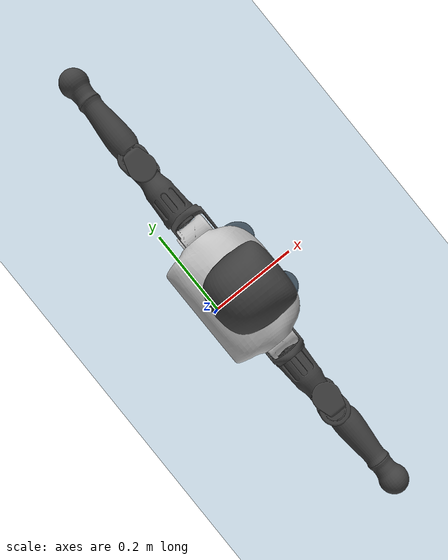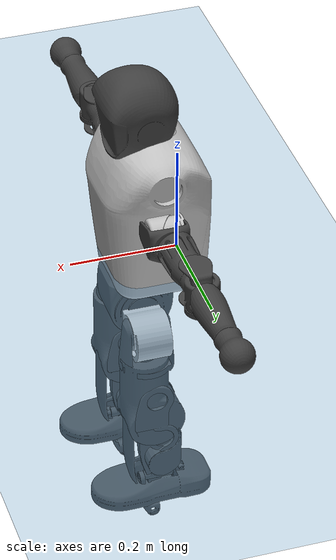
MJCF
<mujoco model="T1">
  <compiler angle="radian" assetdir="assets" balanceinertia="true" inertiafromgeom="false"/>

  <option timestep="0.005" density="1.2" viscosity="2e-05"/>

  <size nkey="1"/>

  <visual>
    <quality shadowsize="8192"/>
    <map shadowclip="0.5"/>
  </visual>

  <default>
    <default class="/">
      <joint armature="0.01" damping="0.01" frictionloss="0.1"/>
      <geom contype="0" conaffinity="0" group="1" solref="-1000 -80"/>
      <site size="0.01 0.005 0.005" group="5"/>
      <general forcelimited="true" biastype="affine" gainprm="25" biasprm="0 -25 -0.6"/>
      <default class="t1">
        <geom rgba="0.25 0.25 0.25 1"/>
        <default class="visual">
          <geom type="mesh" group="2"/>
        </default>
        <default class="collision">
          <geom group="3"/>
        </default>
        <default class="foot">
          <geom size="0.1115 0.05 0.015" type="box" condim="6" group="4" priority="1" solimp="0.015 1 0.015"/>
        </default>
        <default class="reward_collision_sphere">
          <geom group="5" rgba="1 0 0 1"/>
        </default>
      </default>
    </default>
  </default>

  <asset>
    <texture type="skybox" colorspace="auto" name="//unnamed_texture_0" builtin="gradient" rgb1="0.95 0.95 0.95" rgb2="0.95 0.95 0.95" width="100" height="600"/>
    <texture type="2d" colorspace="auto" name="texplane" builtin="checker" rgb1="0.345 0.575 0.748" rgb2="0.345 0.575 0.748" markrgb="1 1 1" width="512" height="512"/>
    <material name="MatPlane" class="/" texture="texplane" texuniform="true" texrepeat="2 2" specular="0.9"/>
    <mesh name="Trunk" class="/" file="Trunk.stl"/>
    <mesh name="H1" class="/" file="H1.stl"/>
    <mesh name="H2" class="/" file="H2.stl"/>
    <mesh name="AL1" class="/" file="AL1.stl"/>
    <mesh name="AL2" class="/" file="AL2.stl"/>
    <mesh name="AL3" class="/" file="AL3.stl"/>
    <mesh name="left_hand_link" class="/" file="left_hand_link.stl"/>
    <mesh name="AR1" class="/" file="AR1.stl"/>
    <mesh name="AR2" class="/" file="AR2.stl"/>
    <mesh name="AR3" class="/" file="AR3.stl"/>
    <mesh name="right_hand_link" class="/" file="right_hand_link.stl"/>
    <mesh name="Waist" class="/" file="Waist.stl"/>
    <mesh name="Hip_Pitch_Left" class="/" file="Hip_Pitch_Left.stl"/>
    <mesh name="Hip_Roll_Left" class="/" file="Hip_Roll_Left.stl"/>
    <mesh name="Hip_Yaw_Left" class="/" file="Hip_Yaw_Left.stl"/>
    <mesh name="Shank_Left" class="/" file="Shank_Left.stl"/>
    <mesh name="Ankle_Cross_Left" class="/" file="Ankle_Cross_Left.stl"/>
    <mesh name="left_foot_link" class="/" file="left_foot_link.stl"/>
    <mesh name="Hip_Pitch_Right" class="/" file="Hip_Pitch_Right.stl"/>
    <mesh name="Hip_Roll_Right" class="/" file="Hip_Roll_Right.stl"/>
    <mesh name="Hip_Yaw_Right" class="/" file="Hip_Yaw_Right.stl"/>
    <mesh name="Shank_Right" class="/" file="Shank_Right.stl"/>
    <mesh name="Ankle_Cross_Right" class="/" file="Ankle_Cross_Right.stl"/>
    <mesh name="right_foot_link" class="/" file="right_foot_link.stl"/>
  </asset>

  <worldbody>
    <geom name="floor" class="/" size="100 100 0.125" type="plane" group="0" material="MatPlane"/>
    <light name="toplight_shadow" class="/" pos="0 0 5" dir="0.0990148 0.0990148 -0.990148" type="directional" ambient="0.04 0.04 0.04" diffuse="0.55 0.55 0.55" specular="0.12 0.12 0.12"/>
    <light name="toplight_fill" class="/" pos="0 0 5" dir="0.0990148 0.0990148 -0.990148" type="directional" castshadow="false" ambient="0.04 0.04 0.04" diffuse="0.3 0.3 0.3" specular="0.08 0.08 0.08"/>
    <body name="trunk" childclass="t1" pos="0.00131744 0.00693671 -0.00528738" quat="0.999993 0.00253478 0.000848236 0.0025305">
      <inertial pos="0.0598815 -0.000741088 0.0680628" quat="0.99996 -0.00108317 -0.00841868 0.00297494" mass="7.4196" diaginertia="0.146351 0.024185 0.00540989"/>
      <joint name="//unnamed_joint_0" type="free" armature="0" damping="0" frictionloss="0"/>
      <geom name="//unnamed_geom_1" class="visual" rgba="0.76 0.76 0.76 1" mesh="Trunk"/>
      <geom name="//unnamed_geom_2" class="collision" size="0.0647783 0.086371 0.129557" pos="0.0678056 0 0.0788869" type="box"/>
      <geom name="//unnamed_geom_3" class="reward_collision_sphere" size="0.0993267" pos="0.0678056 0 0.0657391"/>
      <geom name="//unnamed_geom_4" class="reward_collision_sphere" size="0.0129557" pos="0.0678056 0.06831 0"/>
      <geom name="//unnamed_geom_5" class="reward_collision_sphere" size="0.0129557" pos="0.0678056 -0.06831 0"/>
      <geom name="//unnamed_geom_6" class="reward_collision_sphere" size="0.0129557" pos="0.0678056 0.0859902 0.11833"/>
      <geom name="//unnamed_geom_7" class="reward_collision_sphere" size="0.0129557" pos="0.0678056 -0.0859902 0.11833"/>
      <site name="imu" pos="-0.0264425 -0.000169793 0.00114474" size="0.0086371"/>
      <camera name="track" pos="0 -1.60729 0" quat="0.707107 0.707107 0 0" mode="trackcom"/>
      <camera name="ego_camera" pos="0.137871 0 0.276104" quat="-0.5 -0.5 0.5 0.5"/>
      <body name="H1" pos="0.0632098 -0.00749076 0.164773" quat="1 -6.73736e-05 -0.000114145 -6.71945e-05">
        <inertial pos="0.00519793 -0.00290081 0.0323571" quat="0.787402 -0.0287687 -0.0265522 0.615196" mass="0.292384" diaginertia="0.000471922 7.34817e-05 1.90196e-05"/>
        <joint name="AAHead_yaw" pos="0 0 0" axis="-0.00403021 -0.00171731 0.99999" range="-1.53383 1.68778" armature="0.0114202" damping="0" frictionloss="0.0431657"/>
        <geom name="//unnamed_geom_8" class="visual" mesh="H1"/>
        <body name="H2" pos="-0.0029527 -0.000288063 0.0366302" quat="1 -0.000127268 -0.000176808 0.000151553">
          <inertial pos="0.00868634 -0.00207096 0.0657462" quat="0.988538 0.110983 -0.0720377 -0.0727063" mass="0.43088" diaginertia="0.0041955 0.000687726 0.000206163"/>
          <joint name="Head_pitch" pos="0 0 0" axis="0.00681259 -0.999969 -0.00387046" range="-1.26745 0.39077" armature="0.012581" damping="0" frictionloss="0.0855494"/>
          <geom name="//unnamed_geom_9" class="visual" mesh="H2"/>
          <geom name="//unnamed_geom_10" class="collision" size="0.0690968" pos="0.0113009 0 0.072313"/>
          <geom name="//unnamed_geom_11" class="reward_collision_sphere" size="0.0777339" pos="0.0226019 0 0.0657391"/>
        </body>
      </body>
      <body name="AL1" pos="0.0657244 0.0875863 0.143448" quat="1 -5.84146e-05 0.000646577 0.000138782">
        <inertial pos="0.00198642 0.0360297 -0.000424767" quat="0.527847 0.503337 -0.50977 0.45625" mass="0.328876" diaginertia="0.00251048 0.000409762 3.21697e-05"/>
        <joint name="Left_Shoulder_Pitch" pos="0 0 0" axis="0.0158498 0.999861 0.00516175" range="-3.27319 1.18809" armature="0.00782484" damping="0.00576185" frictionloss="0.0800931"/>
        <geom name="//unnamed_geom_12" class="visual" rgba="0.76 0.76 0.76 1" mesh="AL1"/>
        <body name="AL2" pos="0.00404959 0.0396897 0.00226922" quat="1 0.00051641 -0.000236984 -0.000517815">
          <inertial pos="0.00752005 0.0336369 -0.0013411" quat="0.486605 0.509109 -0.485742 0.517762" mass="0.105665" diaginertia="0.000729993 0.000117033 2.12904e-05"/>
          <joint name="Left_Shoulder_Roll" pos="0 0 0" axis="-0.999979 -0.00650283 0.0002372" range="-1.53752 1.66671" armature="0.00830697" damping="0" frictionloss="0.0786756"/>
          <geom name="//unnamed_geom_13" class="visual" mesh="AL2"/>
          <body name="AL3" pos="-0.00629739 0.0508632 -0.00282921" quat="0.999996 0.00259299 -0.000523613 0.000701874">
            <inertial pos="0.00861536 0.0706986 -0.000198209" quat="0.711122 0.703068 0.000372461 -0.000538264" mass="0.62062" diaginertia="0.0231236 0.00475185 7.87342e-05"/>
            <joint name="Left_Elbow_Pitch" pos="0 0 0" axis="-0.00866332 -0.999962 0.000265447" range="-2.30198 2.27453" armature="0.010135" damping="0" frictionloss="0.0813286"/>
            <geom name="//unnamed_geom_14" class="visual" mesh="AL3"/>
            <geom name="//unnamed_geom_15" class="collision" size="0.0259113 0.0647783" pos="0 0.0401823 0" quat="0.707105 0.707108 0 0" type="cylinder"/>
            <geom name="//unnamed_geom_16" class="reward_collision_sphere" size="0.0310936"/>
            <body name="left_hand_link" pos="0.0029281 0.119835 0.00979316" quat="0.999993 0.00363778 0.000279632 -0.00117576">
              <inertial pos="-0.00172987 0.0925148 -0.00414176" quat="0.714677 0.699363 -0.003297 0.0107876" mass="0.230616" diaginertia="0.0152234 0.00291195 3.16092e-05"/>
              <joint name="Left_Elbow_Yaw" pos="0 0 0" axis="-0.00848743 0.00163418 0.999963" range="-2.47275 0.0228633" armature="0.00785252" damping="0.0156304" frictionloss="0.0807558"/>
              <geom name="//unnamed_geom_17" class="visual" mesh="left_hand_link"/>
              <geom name="//unnamed_geom_18" class="collision" size="0.0259113 0.0755747" pos="0 0.104474 0" quat="0.707105 0.707108 0 0" type="cylinder"/>
              <geom name="//unnamed_geom_19" class="reward_collision_sphere" size="0.0431855"/>
              <geom name="//unnamed_geom_20" class="reward_collision_sphere" size="0.0302299" pos="0 0.0884011 0"/>
              <geom name="//unnamed_geom_21" class="reward_collision_sphere" size="0.0302299" pos="0 0.172784 0"/>
            </body>
          </body>
        </body>
      </body>
      <body name="AR1" pos="0.0618247 -0.0765303 0.147719" quat="1 -0.000596607 0.000309712 0.000587777">
        <inertial pos="0.00142343 -0.0294313 -0.0085402" quat="0.510499 0.49541 -0.50119 0.492716" mass="0.355816" diaginertia="0.00262144 0.000498212 3.7588e-05"/>
        <joint name="Right_Shoulder_Pitch" pos="0 0 0" axis="-0.0124821 -0.999188 -0.0383027" range="-1.33986 3.26247" armature="0.0082751" damping="0.00817842" frictionloss="0.0615252"/>
        <geom name="//unnamed_geom_22" class="visual" rgba="0.76 0.76 0.76 1" mesh="AR1"/>
        <body name="AR2" pos="-0.00114358 -0.0346433 0.00275045" quat="0.999999 0.00045193 -0.000858892 0.00143178">
          <inertial pos="0.00780744 -0.0290287 0.00377161" quat="0.509554 0.477624 -0.517594 0.494294" mass="0.0912731" diaginertia="0.000652121 9.85652e-05 2.13165e-05"/>
          <joint name="Right_Shoulder_Roll" pos="0 0 0" axis="-0.999926 0.000648833 0.0121308" range="-1.70921 1.53025" armature="0.0118148" damping="0.00186464" frictionloss="0.0795502"/>
          <geom name="//unnamed_geom_23" class="visual" mesh="AR2"/>
          <body name="AR3" pos="-0.00162039 -0.0416183 -0.00762487" quat="0.999995 0.00072128 -0.00293025 -0.00064479">
            <inertial pos="-0.00985145 -0.066453 -0.00720501" quat="0.706391 0.707808 -0.000737426 -0.0042742" mass="0.698521" diaginertia="0.0277042 0.00450629 8.1763e-05"/>
            <joint name="Right_Elbow_Pitch" pos="0 0 0" axis="-5.46119e-05 1 8.66289e-05" stiffness="0.00886857" range="-2.29086 2.23705" armature="0.00875036" damping="0" frictionloss="0.0432464"/>
            <geom name="//unnamed_geom_24" class="visual" mesh="AR3"/>
            <geom name="//unnamed_geom_25" class="collision" size="0.0259113 0.0647783" pos="0 -0.0401823 0" quat="0.707105 0.707108 0 0" type="cylinder"/>
            <geom name="//unnamed_geom_26" class="reward_collision_sphere" size="0.0310936"/>
            <body name="right_hand_link" pos="0.00381047 -0.114163 0.00201636" quat="1 -0.00010947 -0.000171983 6.64025e-05">
              <inertial pos="-0.000272285 -0.0878969 -1.24119e-05" quat="0.710508 0.70366 -0.00384076 -0.00512911" mass="0.201207" diaginertia="0.0134292 0.0024348 2.40422e-05"/>
              <joint name="Right_Elbow_Yaw" pos="0 0 0" axis="0.0412094 -0.0215148 0.998919" range="0.00392345 2.42797" armature="0.00958114" damping="0" frictionloss="0.072621"/>
              <geom name="//unnamed_geom_27" class="visual" mesh="right_hand_link"/>
              <geom name="//unnamed_geom_28" class="collision" size="0.0259113 0.0755747" pos="0 -0.104474 0" quat="0.707105 0.707108 0 0" type="cylinder"/>
              <geom name="//unnamed_geom_29" class="reward_collision_sphere" size="0.0431855"/>
              <geom name="//unnamed_geom_30" class="reward_collision_sphere" size="0.0302299" pos="0 -0.0884011 0"/>
              <geom name="//unnamed_geom_31" class="reward_collision_sphere" size="0.0302299" pos="0 -0.172784 0"/>
            </body>
          </body>
        </body>
      </body>
      <body name="Waist" pos="0.0805563 0.00154048 -0.0805304" quat="0.99999 -0.000683285 6.98108e-05 -0.00443061">
        <inertial pos="0.0107944 -0.00530055 0.00977603" quat="0.976572 0.0218687 -0.213604 -0.014238" mass="1.82423" diaginertia="0.0100584 0.00178348 0.000579237"/>
        <joint name="Waist" pos="0 0 0" axis="-0.0151788 0.0114686 0.999819" range="-1.58022 1.5804" armature="0.00846895" damping="0.0150869" frictionloss="0.0907186"/>
        <geom name="//unnamed_geom_32" class="visual" mesh="Waist"/>
        <body name="Hip_Pitch_Left" pos="0.00402962 0.0905262 -0.00651497" quat="1 -3.14466e-05 4.16402e-05 0.000124663">
          <inertial pos="-0.00721473 -0.00357842 -0.0126872" quat="0.980461 0.195768 -0.00178146 -0.0191906" mass="0.645093" diaginertia="0.00348614 0.000434308 0.00014734"/>
          <joint name="Left_Hip_Pitch" pos="0 0 0" axis="0.02015 0.999566 -0.0214804" range="-1.83152 1.55003" armature="0.00726108" damping="0.00227223" frictionloss="0.0950831"/>
          <geom name="//unnamed_geom_33" class="visual" rgba="0.76 0.76 0.76 1" mesh="Hip_Pitch_Left"/>
          <body name="Hip_Roll_Left" pos="0.00558982 0.00184998 -0.00397708" quat="1 -0.000158032 -5.68578e-05 0.000222368">
            <inertial pos="0.00193954 0.00931936 -0.0338064" quat="0.706588 -0.00706045 -0.00825864 0.707542" mass="0.261102" diaginertia="0.0037263 0.000600603 5.89786e-05"/>
            <joint name="Left_Hip_Roll" pos="0 0 0" axis="-0.999946 0.0038584 0.00964305" stiffness="0.00280858" range="-1.58864 0.145786" armature="0.00886465" damping="0.0529153" frictionloss="0.0621421"/>
            <geom name="//unnamed_geom_34" class="visual" mesh="Hip_Roll_Left"/>
            <geom name="//unnamed_geom_35" class="reward_collision_sphere" size="0.0475041"/>
            <body name="Hip_Yaw_Left" pos="0.00279385 0.00213079 -0.0548405" quat="0.999999 -0.00139906 -0.000361152 0.000929658">
              <inertial pos="-0.00712759 -0.000545577 -0.053757" quat="0.698539 -0.0345895 -0.030278 0.714094" mass="1.43085" diaginertia="0.0507492 0.00956257 0.000355046"/>
              <joint name="Left_Hip_Yaw" pos="0 0 0" axis="0.00269916 -0.0110903 -0.999935" stiffness="0.035314" range="-0.81804 0.974597" armature="0.00829562" damping="0" frictionloss="0.0895748"/>
              <geom name="//unnamed_geom_36" class="visual" mesh="Hip_Yaw_Left"/>
              <geom name="//unnamed_geom_37" class="collision" size="0.0431855 0.0690968" type="cylinder"/>
              <body name="Shank_Left" pos="-0.0114715 0.00215342 -0.0778668" quat="1 -0.000574321 0.000588136 1.95006e-05">
                <inertial pos="-0.00102078 0.00319213 -0.0809521" quat="0.998127 0.0114086 -0.0117979 0.0589418" mass="1.10408" diaginertia="0.060996 0.0130372 0.00024767"/>
                <joint name="Left_Knee_Pitch" pos="0 0 0" axis="0.0037335 0.999953 0.00898276" range="0.00870681 2.42114" armature="0.00638893" damping="0.0292252" frictionloss="0.0776374"/>
                <geom name="//unnamed_geom_38" class="visual" mesh="Shank_Left"/>
                <geom name="//unnamed_geom_39" class="collision" size="0.0431855 0.0647783" pos="0 0 -0.0788869" type="cylinder"/>
                <geom name="//unnamed_geom_40" class="reward_collision_sphere" size="0.0561412"/>
                <body name="Ankle_Cross_Left" pos="-0.0074235 0.000971182 -0.194013" quat="0.999999 -0.000451624 0.000702295 0.00126478">
                  <inertial pos="0.00591978 0.00157796 -0.00847481" quat="0.438042 0.546399 0.556429 0.447162" mass="0.0486136" diaginertia="5.63657e-05 8.71836e-06 1.3845e-06"/>
                  <joint name="Left_Ankle_Pitch" pos="0 0 0" axis="0.00351578 0.999993 -0.00102046" stiffness="0.0287984" range="-0.866276 0.338065" armature="0.00445871" damping="0" frictionloss="0.0949899"/>
                  <geom name="//unnamed_geom_41" class="visual" mesh="Ankle_Cross_Left"/>
                  <body name="left_foot_link" pos="0.000234984 0.00467377 -0.0123247" quat="0.999987 -0.00453948 0.00102432 0.00198358">
                    <inertial pos="0.00529635 0.00312633 -0.00771149" quat="0.0291694 0.601472 -0.00934099 0.798307" mass="0.400128" diaginertia="0.00454911 0.000772433 0.000237217"/>
                    <joint name="Left_Ankle_Roll" pos="0 0 0" axis="-0.99883 -0.04526 0.0170324" range="-0.455014 0.355958" armature="0.00885245" damping="0.0344408" frictionloss="0.0838243"/>
                    <geom name="//unnamed_geom_42" class="visual" mesh="left_foot_link"/>
                    <geom name="left_foot" class="foot" size="0.087019 0.0574837 0.0114871" pos="0.0113009 0 -0.00986086"/>
                    <geom name="//unnamed_geom_44" class="reward_collision_sphere" size="0.0449129" pos="0.0113009 0 -0.00986086"/>
                    <geom name="//unnamed_geom_45" class="reward_collision_sphere" size="0.0259113" pos="0.107359 -0.0184839 -0.00986086"/>
                    <geom name="//unnamed_geom_46" class="reward_collision_sphere" size="0.0259113" pos="-0.0791066 -0.0184839 -0.00986086"/>
                    <site name="left_foot" class="foot" pos="0.0113009 0 -0.00986086" size="0.0086371"/>
                  </body>
                </body>
              </body>
            </body>
          </body>
        </body>
        <body name="Hip_Pitch_Right" pos="-0.00151619 -0.0817087 0.00926344" quat="1 -0.000550677 -0.000376908 1.83234e-05">
          <inertial pos="0.00925693 0.0134088 -0.0110538" quat="0.973456 -0.22836 0.0146803 -0.00438794" mass="0.659142" diaginertia="0.00312804 0.000457177 0.000156507"/>
          <joint name="Right_Hip_Pitch" pos="0 0 0" axis="-0.00100043 -0.999999 -0.000290409" stiffness="0.00169066" range="-1.57851 1.88247" armature="0.0091189" damping="0.0474344" frictionloss="0.0802088"/>
          <geom name="//unnamed_geom_47" class="visual" rgba="0.76 0.76 0.76 1" mesh="Hip_Pitch_Right"/>
          <body name="Hip_Roll_Right" pos="0.00377016 0.00380629 -0.0039773" quat="0.999998 -0.000608175 -0.0013989 -0.000916506">
            <inertial pos="0.00615792 -0.00101755 -0.0400319" quat="0.722863 -0.0268596 0.00813425 0.690421" mass="0.238473" diaginertia="0.00280914 0.000499686 6.04468e-05"/>
            <joint name="Right_Hip_Roll" pos="0 0 0" axis="-0.999995 0.0010766 -0.0030046" range="-0.228142 1.59755" armature="0.00806772" damping="0.00754007" frictionloss="0.0662425"/>
            <geom name="//unnamed_geom_48" class="visual" mesh="Hip_Roll_Right"/>
            <geom name="//unnamed_geom_49" class="reward_collision_sphere" size="0.0475041"/>
            <body name="Hip_Yaw_Right" pos="0.0089803 0.00295834 -0.0536173" quat="0.999999 -0.00119968 -0.000237232 -0.000139091">
              <inertial pos="-0.00887536 4.2475e-05 -0.0624282" quat="0.709793 -0.0347453 -0.0283519 0.702982" mass="1.32974" diaginertia="0.041042 0.00825856 0.000273376"/>
              <joint name="Right_Hip_Yaw" pos="0 0 0" axis="-0.00431776 -0.00121116 -0.99999" range="-1.04408 0.962264" armature="0.00923996" damping="0" frictionloss="0.089504"/>
              <geom name="//unnamed_geom_50" class="visual" mesh="Hip_Yaw_Right"/>
              <geom name="//unnamed_geom_51" class="collision" size="0.0431855 0.0690968" type="cylinder"/>
              <body name="Shank_Right" pos="-0.00922488 0.0029297 -0.083534" quat="1 9.05858e-05 -0.000178752 -0.000380075">
                <inertial pos="-0.00622005 0.00646274 -0.0814697" quat="0.998655 0.0161296 -0.0120663 -0.0477662" mass="1.02688" diaginertia="0.0640444 0.0113911 0.000257378"/>
                <joint name="Right_Knee_Pitch" pos="0 0 0" axis="0.0116104 -0.99993 -0.00241658" stiffness="0.00318534" range="-2.18347 0.0219866" armature="0.00859514" damping="0.00243148" frictionloss="0.0794764"/>
                <geom name="//unnamed_geom_52" class="visual" mesh="Shank_Right"/>
                <geom name="//unnamed_geom_53" class="collision" size="0.0431855 0.0647783" pos="0 0 -0.0788869" type="cylinder"/>
                <geom name="//unnamed_geom_54" class="reward_collision_sphere" size="0.0561412"/>
                <body name="Ankle_Cross_Right" pos="0.00331013 0.000380984 -0.18331" quat="1 -2.90079e-05 4.70052e-05 1.41528e-05">
                  <inertial pos="-0.00751764 -0.00255298 -0.00494646" quat="0.44183 0.552177 0.551202 0.442791" mass="0.0504677" diaginertia="4.95296e-05 9.265e-06 1.29065e-06"/>
                  <joint name="Right_Ankle_Pitch" pos="0 0 0" axis="-0.0117785 -0.999326 0.0347647" stiffness="0.0279755" range="-0.428138 0.97891" armature="0.00882628" damping="0" frictionloss="0.0890048"/>
                  <geom name="//unnamed_geom_55" class="visual" mesh="Ankle_Cross_Right"/>
                  <body name="right_foot_link" pos="-0.00408594 -0.00680254 -0.0177083" quat="1 -0.000277167 -0.000185235 -0.000354925">
                    <inertial pos="-0.000225163 -0.00673977 0.00357142" quat="0.0318865 0.610873 -0.00149549 0.791085" mass="0.510201" diaginertia="0.00573093 0.000907438 0.00033627"/>
                    <joint name="Right_Ankle_Roll" pos="0 0 0" axis="-0.999984 3.08523e-05 -0.0057179" range="-0.317497 0.27291" armature="0.0129836" damping="0.0522203" frictionloss="0.0650773"/>
                    <geom name="//unnamed_geom_56" class="visual" mesh="right_foot_link"/>
                    <geom name="right_foot" class="foot" size="0.0795285 0.0541941 0.00965715" pos="0.0113009 0 -0.00986086"/>
                    <geom name="//unnamed_geom_58" class="reward_collision_sphere" size="0.0345484"/>
                    <geom name="//unnamed_geom_59" class="reward_collision_sphere" size="0.0259113" pos="0.0113009 0 -0.00986086"/>
                    <geom name="//unnamed_geom_60" class="reward_collision_sphere" size="0.0259113" pos="0.107359 0.0184839 -0.00986086"/>
                    <geom name="//unnamed_geom_61" class="reward_collision_sphere" size="0.0259113" pos="-0.0791066 0.0184839 -0.00986086"/>
                    <site name="right_foot" class="foot" pos="0.0113009 0 -0.00986086" size="0.0086371"/>
                  </body>
                </body>
              </body>
            </body>
          </body>
        </body>
      </body>
    </body>
  </worldbody>

  <contact>
    <pair class="/" geom1="floor" geom2="left_foot" name="//unnamed_contact_0"/>
    <pair class="/" geom1="floor" geom2="right_foot" name="//unnamed_contact_1"/>
  </contact>

  <actuator>
    <general name="AAHead_yaw" class="/" joint="AAHead_yaw" forcerange="-5.9022 5.9022" gainprm="22.7534" biasprm="0 -22.7534 -0.480644"/>
    <general name="Head_pitch" class="/" joint="Head_pitch" forcerange="-6.45683 6.45683" gainprm="22.7534" biasprm="0 -22.7534 -0.480644"/>
    <general name="Left_Shoulder_Pitch" class="/" joint="Left_Shoulder_Pitch" forcerange="-21.3325 21.3325" gainprm="22.7534" biasprm="0 -22.7534 -0.480644"/>
    <general name="Left_Shoulder_Roll" class="/" joint="Left_Shoulder_Roll" forcerange="-19.7706 19.7706" gainprm="22.7534" biasprm="0 -22.7534 -0.480644"/>
    <general name="Left_Elbow_Pitch" class="/" joint="Left_Elbow_Pitch" forcerange="-13.0232 13.0232" gainprm="22.7534" biasprm="0 -22.7534 -0.480644"/>
    <general name="Left_Elbow_Yaw" class="/" joint="Left_Elbow_Yaw" forcerange="-15.0332 15.0332" gainprm="22.7534" biasprm="0 -22.7534 -0.480644"/>
    <general name="Right_Shoulder_Pitch" class="/" joint="Right_Shoulder_Pitch" forcerange="-15.1034 15.1034" gainprm="22.7534" biasprm="0 -22.7534 -0.480644"/>
    <general name="Right_Shoulder_Roll" class="/" joint="Right_Shoulder_Roll" forcerange="-12.6594 12.6594" gainprm="22.7534" biasprm="0 -22.7534 -0.480644"/>
    <general name="Right_Elbow_Pitch" class="/" joint="Right_Elbow_Pitch" forcerange="-16.2868 16.2868" gainprm="22.7534" biasprm="0 -22.7534 -0.480644"/>
    <general name="Right_Elbow_Yaw" class="/" joint="Right_Elbow_Yaw" forcerange="-15.2575 15.2575" gainprm="22.7534" biasprm="0 -22.7534 -0.480644"/>
    <general name="Waist" class="/" joint="Waist" forcerange="-32.1602 32.1602" gainprm="22.7534" biasprm="0 -22.7534 -0.480644"/>
    <general name="Left_Hip_Pitch" class="/" joint="Left_Hip_Pitch" forcerange="-41.5658 41.5658" gainprm="22.7534" biasprm="0 -22.7534 -0.480644"/>
    <general name="Left_Hip_Roll" class="/" joint="Left_Hip_Roll" forcerange="-24.8002 24.8002" gainprm="22.7534" biasprm="0 -22.7534 -0.480644"/>
    <general name="Left_Hip_Yaw" class="/" joint="Left_Hip_Yaw" forcerange="-29.1629 29.1629" gainprm="22.7534" biasprm="0 -22.7534 -0.480644"/>
    <general name="Left_Knee_Pitch" class="/" joint="Left_Knee_Pitch" forcerange="-48.4634 48.4634" gainprm="22.7534" biasprm="0 -22.7534 -0.480644"/>
    <general name="Left_Ankle_Pitch" class="/" joint="Left_Ankle_Pitch" forcerange="-17.3104 17.3104" gainprm="22.7534" biasprm="0 -22.7534 -0.480644"/>
    <general name="Left_Ankle_Roll" class="/" joint="Left_Ankle_Roll" forcerange="-12.6828 12.6828" gainprm="22.7534" biasprm="0 -22.7534 -0.480644"/>
    <general name="Right_Hip_Pitch" class="/" joint="Right_Hip_Pitch" forcerange="-28.1048 28.1048" gainprm="22.7534" biasprm="0 -22.7534 -0.480644"/>
    <general name="Right_Hip_Roll" class="/" joint="Right_Hip_Roll" forcerange="-16.6508 16.6508" gainprm="22.7534" biasprm="0 -22.7534 -0.480644"/>
    <general name="Right_Hip_Yaw" class="/" joint="Right_Hip_Yaw" forcerange="-25.0625 25.0625" gainprm="22.7534" biasprm="0 -22.7534 -0.480644"/>
    <general name="Right_Knee_Pitch" class="/" joint="Right_Knee_Pitch" forcerange="-46.1935 46.1935" gainprm="22.7534" biasprm="0 -22.7534 -0.480644"/>
    <general name="Right_Ankle_Pitch" class="/" joint="Right_Ankle_Pitch" forcerange="-23.2909 23.2909" gainprm="22.7534" biasprm="0 -22.7534 -0.480644"/>
    <general name="Right_Ankle_Roll" class="/" joint="Right_Ankle_Roll" forcerange="-10.0131 10.0131" gainprm="22.7534" biasprm="0 -22.7534 -0.480644"/>
  </actuator>

  <sensor>
    <gyro site="imu" name="imu_angular_velocity"/>
    <velocimeter site="imu" name="imu_linear_velocity"/>
    <framelinvel objtype="site" objname="left_foot" name="left_foot_global_linear_velocity"/>
    <framelinvel objtype="site" objname="right_foot" name="right_foot_global_linear_velocity"/>
  </sensor>

  <keyframe>
    <key name="home" qpos="0 0 0.6385 1 0 0 0 0 0 0 1.4 0 -0.4 0 -1.4 0 0.4 0 -0.4 0 0 0.8 -0.4 0 0.4 0 0 -0.8 0.4 0"/>
  </keyframe>
</mujoco>
